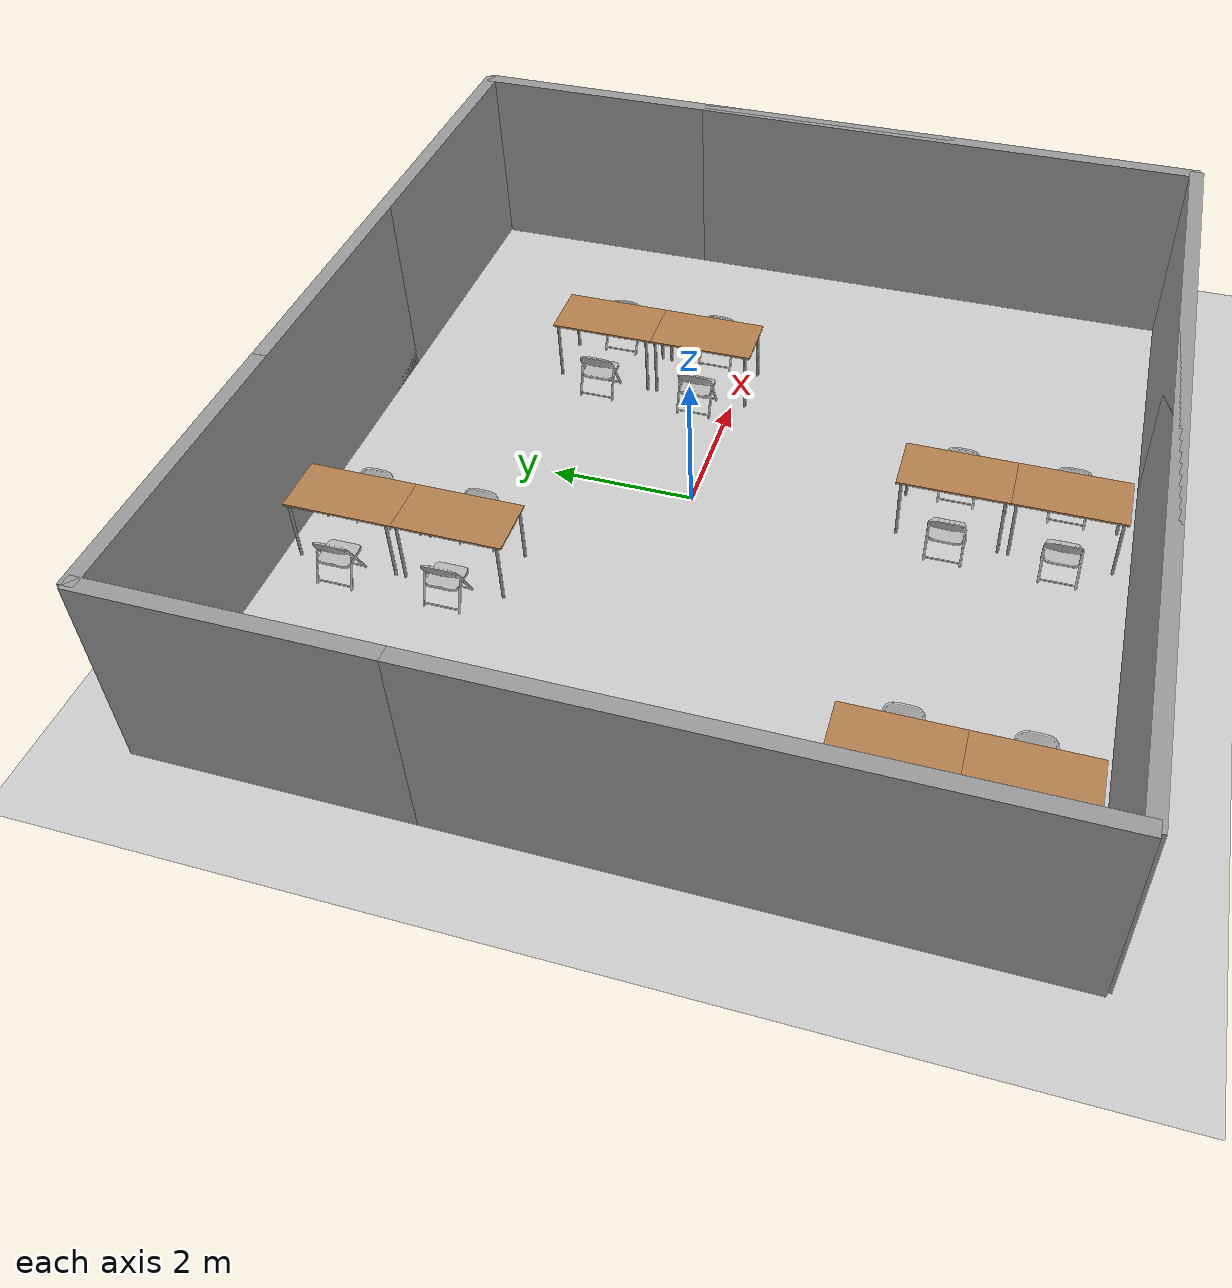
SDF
<sdf version="1.7">
 <world name="default">
  <light name="sun" type="directional">
   <pose>0 0 10 0 -0 0</pose>
   <diffuse>0.8 0.8 0.8 1</diffuse>
   <specular>0.2 0.2 0.2 1</specular>
   <attenuation>
    <range>1000</range>
    <constant>0.9</constant>
    <linear>0.01</linear>
    <quadratic>0.001</quadratic>
   </attenuation>
   <direction>-0.5 0.1 -0.9</direction>
  </light>
  <model name="ground_plane">
   <static>1</static>
   <link name="link">
    <collision name="collision">
     <geometry><plane><normal>0 0 1</normal><size>100 100</size></plane></geometry>
     <surface>
      <contact><collide_bitmask>65535</collide_bitmask></contact>
      <friction><ode><mu>100</mu><mu2>50</mu2></ode></friction>
     </surface>
    </collision>
    <visual name="visual">
     <cast_shadows>0</cast_shadows>
     <geometry><plane><normal>0 0 1</normal><size>100 100</size></plane></geometry>
     <material>
      <script><uri>file://media/materials/scripts/gazebo.material</uri><name>Gazebo/Grey</name></script>
     </material>
    </visual>
   </link>
  </model>
  <include><name>grey_wall_right1</name><uri>model://grey_wall</uri><pose>-2 -6 0 0 0 0</pose></include>
  <include><name>grey_wall_right2</name><uri>model://grey_wall</uri><pose>2 -6 0 0 0 0</pose></include>
  <include><name>grey_wall_left</name><uri>model://grey_wall</uri><pose>-2 5 0 0 0 0</pose></include>
  <include><name>grey_wall_left2</name><uri>model://grey_wall</uri><pose>2 5 0 0 0 0</pose></include>
  <include><name>grey_wall_front</name><uri>model://grey_wall</uri><pose>5.7 -2.3 0 0 0 1.5708</pose></include>
  <include><name>grey_wall_front2</name><uri>model://grey_wall</uri><pose>5.7 1.3 0 0 0 1.5708</pose></include>
  <include><name>grey_wall_back</name><uri>model://grey_wall</uri><pose>-5.7 -2.3 0 0 0 1.5708</pose></include>
  <include><name>grey_wall_back2</name><uri>model://grey_wall</uri><pose>-5.7 1.3 0 0 0 1.5708</pose></include>
  <include><name>table1a</name><uri>model://table</uri><pose>-4 -5 -0.1 0 0 1.5708</pose></include>
  <include><name>table1b</name><uri>model://table</uri><pose>-4 -3.5 -0.1 0 0 1.5708</pose></include>
  <include>
   <name>chair1a_left</name>
   <uri>model://foldable_chair</uri>
   <pose>-4.5 -5 -0.1 0 0 1.5708</pose>
  </include>
  <include>
   <name>chair1a_right</name>
   <uri>model://foldable_chair</uri>
   <pose>-3.5 -5 -0.1 0 0 -1.5708</pose>
  </include>
  <include>
   <name>chair1b_left</name>
   <uri>model://foldable_chair</uri>
   <pose>-4.5 -3.5 -0.1 0 0 1.5708</pose>
  </include>
  <include>
   <name>chair1b_right</name>
   <uri>model://foldable_chair</uri>
   <pose>-3.5 -3.5 -0.1 0 0 -1.5708</pose>
  </include>
  <include><name>table2a</name><uri>model://table</uri><pose>-2 4 -0.1 0 0 1.5708</pose></include>
  <include><name>table2b</name><uri>model://table</uri><pose>-2 2.5 -0.1 0 0 1.5708</pose></include>
  <include>
   <name>chair2a_left</name>
   <uri>model://foldable_chair</uri>
   <pose>-2.5 4 -0.1 0 0 1.5708</pose>
  </include>
  <include>
   <name>chair2a_right</name>
   <uri>model://foldable_chair</uri>
   <pose>-1.5 4 -0.1 0 0 -1.5708</pose>
  </include>
  <include>
   <name>chair2b_left</name>
   <uri>model://foldable_chair</uri>
   <pose>-2.5 2.5 -0.1 0 0 1.5708</pose>
  </include>
  <include>
   <name>chair2b_right</name>
   <uri>model://foldable_chair</uri>
   <pose>-1.5 2.5 -0.1 0 0 -1.5708</pose>
  </include>
  <include><name>table3a</name><uri>model://table</uri><pose>0.5 -5 -0.1 0 0 1.5708</pose></include>
  <include><name>table3b</name><uri>model://table</uri><pose>0.5 -3.5 -0.1 0 0 1.5708</pose></include>
  <include><name>chair3a_left</name><uri>model://foldable_chair</uri><pose>0 -5 -0.1 0 0 1.5708</pose></include>
  <include>
   <name>chair3a_right</name>
   <uri>model://foldable_chair</uri>
   <pose>1 -5 -0.1 0 0 -1.5708</pose>
  </include>
  <include>
   <name>chair3b_left</name>
   <uri>model://foldable_chair</uri>
   <pose>0 -3.5 -0.1 0 0 1.5708</pose>
  </include>
  <include>
   <name>chair3b_right</name>
   <uri>model://foldable_chair</uri>
   <pose>1 -3.5 -0.1 0 0 -1.5708</pose>
  </include>
  <include><name>table4a</name><uri>model://table</uri><pose>2.5 2 -0.1 0 0 1.5708</pose></include>
  <include><name>table4b</name><uri>model://table</uri><pose>2.5 0.5 -0.1 0 0 1.5708</pose></include>
  <include><name>chair4a_left</name><uri>model://foldable_chair</uri><pose>2 2 -0.1 0 0 1.5708</pose></include>
  <include>
   <name>chair4a_right</name>
   <uri>model://foldable_chair</uri>
   <pose>3 2 -0.1 0 0 -1.5708</pose>
  </include>
  <include>
   <name>chair4b_left</name>
   <uri>model://foldable_chair</uri>
   <pose>2 0.5 -0.1 0 0 1.5708</pose>
  </include>
  <include>
   <name>chair4b_right</name>
   <uri>model://foldable_chair</uri>
   <pose>3 0.5 -0.1 0 0 -1.5708</pose>
  </include>
  <gravity>0 0 -9.8</gravity>
  <magnetic_field>6e-06 2.3e-05 -4.2e-05</magnetic_field>
  <atmosphere type="adiabatic"/>
  <physics type="ode">
   <max_step_size>0.001</max_step_size>
   <real_time_factor>1</real_time_factor>
   <real_time_update_rate>1000</real_time_update_rate>
  </physics>
  <scene><ambient>0.4 0.4 0.4 1</ambient><background>0.7 0.7 0.7 1</background><shadows>1</shadows></scene>
  <spherical_coordinates>
   <surface_model>EARTH_WGS84</surface_model>
   <latitude_deg>0</latitude_deg>
   <longitude_deg>0</longitude_deg>
   <elevation>0</elevation>
   <heading_deg>0</heading_deg>
  </spherical_coordinates>
 </world>
</sdf>

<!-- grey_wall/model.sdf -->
<sdf version="1.5">
  <model name="grey_wall">
    <static>true</static>
    <link name="link">
      <pose>0 0 1.4 0 0 0</pose>
      <collision name="collision">
        <geometry>
          <box>
            <size>7.5 0.2 2.8</size>
          </box>
        </geometry>
      </collision>
      <visual name="visual">
        <cast_shadows>false</cast_shadows>
        <geometry>
          <box>
            <size>7.5 0.2 2.8</size>
          </box>
        </geometry>
        <material>
          <script>
            <uri>model://../model_source/models/grey_wall/materials/scripts</uri>
            <uri>model://../model_source/models/grey_wall/materials/textures</uri>
            <name>vrc/grey_wall</name>
          </script>
        </material>
      </visual>
    </link>
  </model>
</sdf>

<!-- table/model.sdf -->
<sdf version="1.5">
  <model name="table">
    <static>true</static>
    <link name="link">
      <collision name="surface">
        <pose>0 0 1.0 0 0 0</pose>
        <geometry>
          <box>
            <size>1.5 0.8 0.03</size>
          </box>
        </geometry>
        <surface>
          <friction>
            <ode>
              <mu>0.6</mu>
              <mu2>0.6</mu2>
            </ode>
          </friction>
        </surface>
      </collision>
      <visual name="visual1">
        <pose>0 0 1.0 0 0 0</pose>
        <geometry>
          <box>
            <size>1.5 0.8 0.03</size>
          </box>
        </geometry>
        <material>
          <script>
            <uri>model://media/materials/scripts/gazebo.material</uri>
            <name>Gazebo/Wood</name>
          </script>
        </material>
      </visual>
      <collision name="front_left_leg">
        <pose>0.68 0.38 0.5 0 0 0</pose>
        <geometry>
          <cylinder>
            <radius>0.02</radius>
            <length>1.0</length>
          </cylinder>
        </geometry>
      </collision>
      <visual name="front_left_leg">
        <pose>0.68 0.38 0.5 0 0 0</pose>
        <geometry>
          <cylinder>
            <radius>0.02</radius>
            <length>1.0</length>
          </cylinder>
        </geometry>
        <material>
          <script>
            <uri>model://media/materials/scripts/gazebo.material</uri>
            <name>Gazebo/Grey</name>
          </script>
        </material>
      </visual>
      <collision name="front_right_leg">
        <pose>0.68 -0.38 0.5 0 0 0</pose>
        <geometry>
          <cylinder>
            <radius>0.02</radius>
            <length>1.0</length>
          </cylinder>
        </geometry>
      </collision>
      <visual name="front_right_leg">
        <pose>0.68 -0.38 0.5 0 0 0</pose>
        <geometry>
          <cylinder>
            <radius>0.02</radius>
            <length>1.0</length>
          </cylinder>
        </geometry>
        <material>
          <script>
            <uri>model://media/materials/scripts/gazebo.material</uri>
            <name>Gazebo/Grey</name>
          </script>
        </material>
      </visual>
      <collision name="back_right_leg">
        <pose>-0.68 -0.38 0.5 0 0 0</pose>
        <geometry>
          <cylinder>
            <radius>0.02</radius>
            <length>1.0</length>
          </cylinder>
        </geometry>
      </collision>
      <visual name="back_right_leg">
        <pose>-0.68 -0.38 0.5 0 0 0</pose>
        <geometry>
          <cylinder>
            <radius>0.02</radius>
            <length>1.0</length>
          </cylinder>
        </geometry>
        <material>
          <script>
            <uri>model://media/materials/scripts/gazebo.material</uri>
            <name>Gazebo/Grey</name>
          </script>
        </material>
      </visual>
      <collision name="back_left_leg">
        <pose>-0.68 0.38 0.5 0 0 0</pose>
        <geometry>
          <cylinder>
            <radius>0.02</radius>
            <length>1.0</length>
          </cylinder>
        </geometry>
      </collision>
      <visual name="back_left_leg">
        <pose>-0.68 0.38 0.5 0 0 0</pose>
        <geometry>
          <cylinder>
            <radius>0.02</radius>
            <length>1.0</length>
          </cylinder>
        </geometry>
        <material>
          <script>
            <uri>model://media/materials/scripts/gazebo.material</uri>
            <name>Gazebo/Grey</name>
          </script>
        </material>
      </visual>
    </link>
  </model>
</sdf>

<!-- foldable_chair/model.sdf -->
<sdf version="1.6">
  <model name="foldable_chair">
    <static>true</static>
    <link name="base_link">
      <visual name="visual">
        <geometry>
          <mesh>
            <scale>0.1 0.1 0.1</scale>
            <uri>model://foldable_chair/mesh/foldable_chair.dae</uri>
          </mesh>
        </geometry>
      </visual>
      <collision name="collision">
        <pose>0 0.05 0.4 0 0 0</pose>
        <geometry>
          <box>
            <size>0.5 0.5 0.8</size>
          </box>
        </geometry>
      </collision>
    </link>
  </model>
</sdf>
